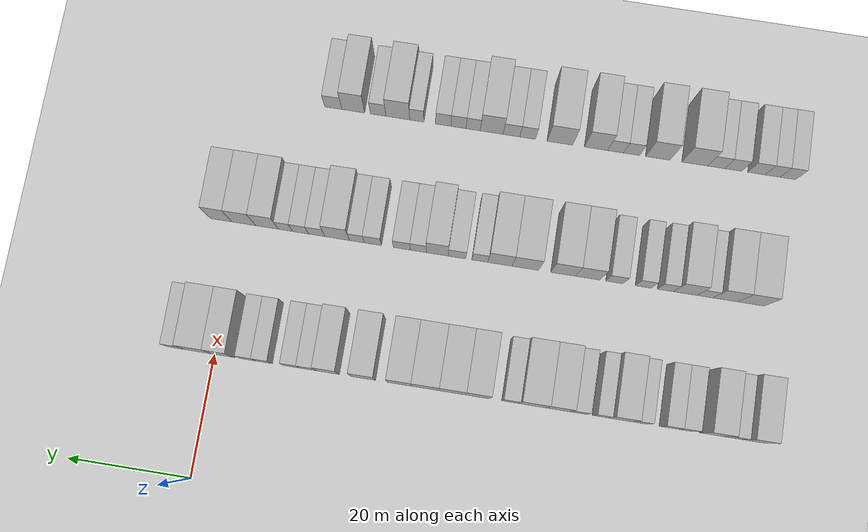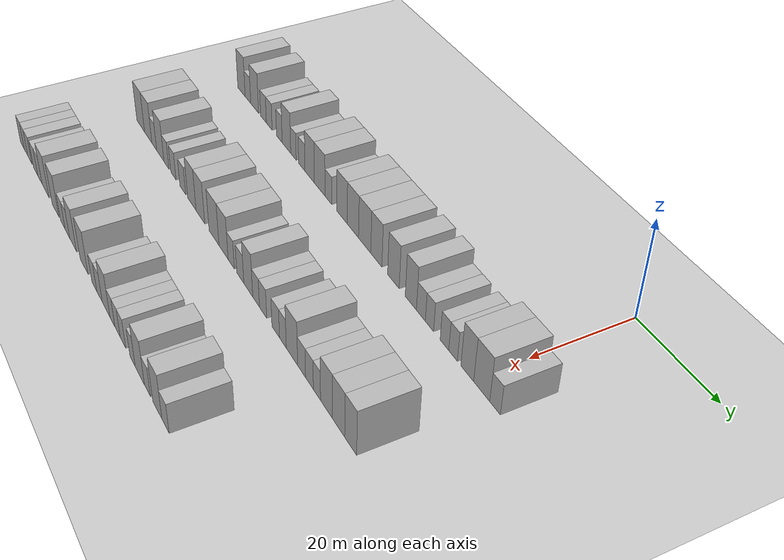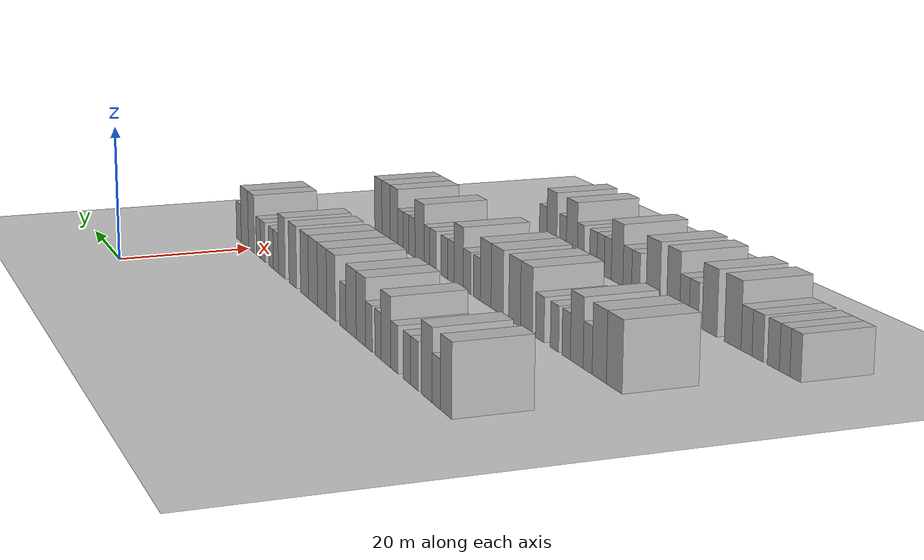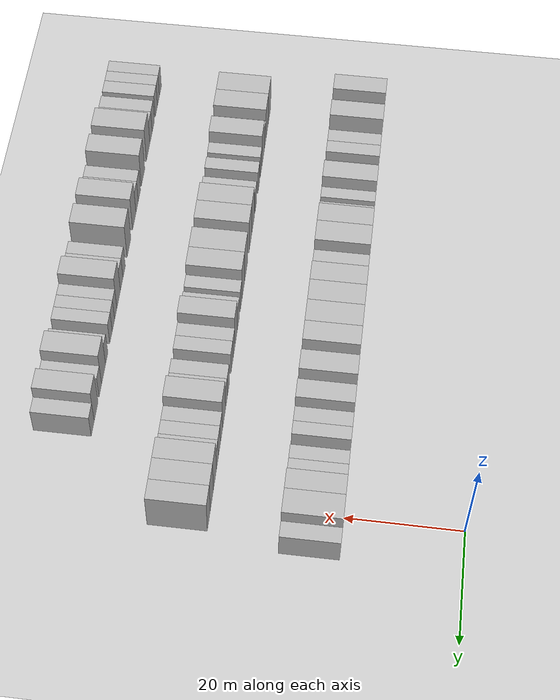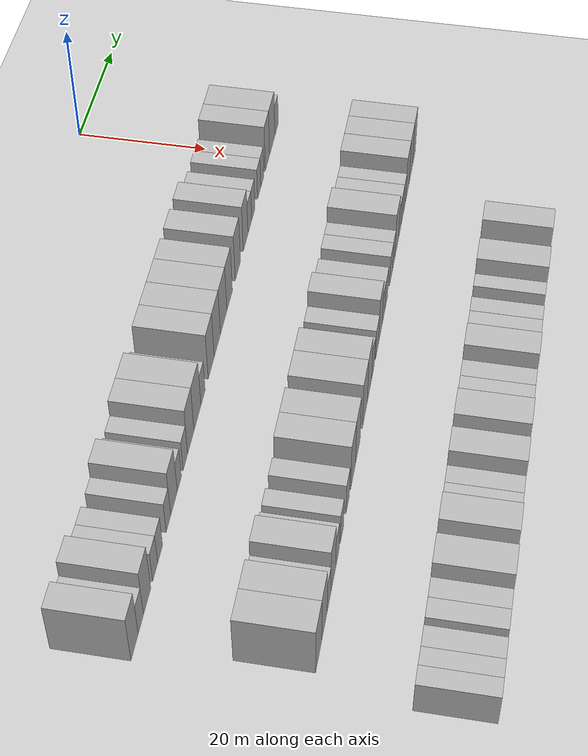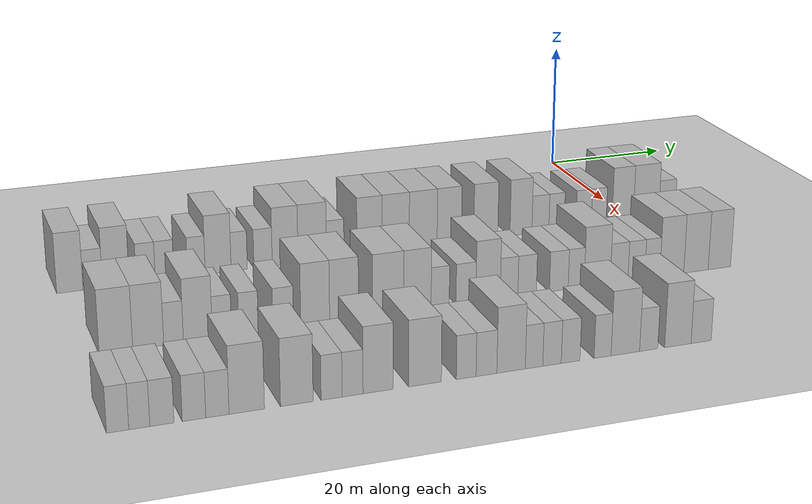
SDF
<sdf version="1.6">
 <world name="default">
  <include><name>ground_plane_1</name><uri>model://HANNAS_ground_plane</uri></include>
  <model name="building_74">
   <static>1</static>
   <pose>25.0000 -87.5375 0 0.000000 0.000000 0.000000</pose>
   <link name="link">
    <pose>0 0 4.50 0 0 0</pose>
    <collision name="collision"><geometry><box><size>10.0000 3.7074 9.0000</size></box></geometry></collision>
    <visual name="visual">
     <cast_shadows>0</cast_shadows>
     <geometry><box><size>10.0000 3.7074 9.0000</size></box></geometry>
     <material>
      <script>
       <uri>model://HANNAS_wall/materials/scripts</uri>
       <uri>model://HANNAS_wall/materials/textures</uri>
       <name>vrc/HANNAS_wall</name>
      </script>
     </material>
    </visual>
   </link>
  </model>
  <model name="building_75">
   <static>1</static>
   <pose>25.0000 -84.3026 0 0.000000 0.000000 0.000000</pose>
   <link name="link">
    <pose>0 0 3.00 0 0 0</pose>
    <collision name="collision"><geometry><box><size>10.0000 2.7624 6.0000</size></box></geometry></collision>
    <visual name="visual">
     <cast_shadows>0</cast_shadows>
     <geometry><box><size>10.0000 2.7624 6.0000</size></box></geometry>
     <material>
      <script>
       <uri>model://HANNAS_wall/materials/scripts</uri>
       <uri>model://HANNAS_wall/materials/textures</uri>
       <name>vrc/HANNAS_wall</name>
      </script>
     </material>
    </visual>
   </link>
  </model>
  <model name="building_76">
   <static>1</static>
   <pose>25.0000 -81.0090 0 0.000000 0.000000 0.000000</pose>
   <link name="link">
    <pose>0 0 4.50 0 0 0</pose>
    <collision name="collision"><geometry><box><size>10.0000 3.8246 9.0000</size></box></geometry></collision>
    <visual name="visual">
     <cast_shadows>0</cast_shadows>
     <geometry><box><size>10.0000 3.8246 9.0000</size></box></geometry>
     <material>
      <script>
       <uri>model://HANNAS_wall/materials/scripts</uri>
       <uri>model://HANNAS_wall/materials/textures</uri>
       <name>vrc/HANNAS_wall</name>
      </script>
     </material>
    </visual>
   </link>
  </model>
  <model name="building_77">
   <static>1</static>
   <pose>25.0000 -76.7319 0 0.000000 0.000000 0.000000</pose>
   <link name="link">
    <pose>0 0 3.00 0 0 0</pose>
    <collision name="collision"><geometry><box><size>10.0000 2.7297 6.0000</size></box></geometry></collision>
    <visual name="visual">
     <cast_shadows>0</cast_shadows>
     <geometry><box><size>10.0000 2.7297 6.0000</size></box></geometry>
     <material>
      <script>
       <uri>model://HANNAS_wall/materials/scripts</uri>
       <uri>model://HANNAS_wall/materials/textures</uri>
       <name>vrc/HANNAS_wall</name>
      </script>
     </material>
    </visual>
   </link>
  </model>
  <model name="building_78">
   <static>1</static>
   <pose>25.0000 -74.0123 0 0.000000 0.000000 0.000000</pose>
   <link name="link">
    <pose>0 0 3.00 0 0 0</pose>
    <collision name="collision"><geometry><box><size>10.0000 2.7094 6.0000</size></box></geometry></collision>
    <visual name="visual">
     <cast_shadows>0</cast_shadows>
     <geometry><box><size>10.0000 2.7094 6.0000</size></box></geometry>
     <material>
      <script>
       <uri>model://HANNAS_wall/materials/scripts</uri>
       <uri>model://HANNAS_wall/materials/textures</uri>
       <name>vrc/HANNAS_wall</name>
      </script>
     </material>
    </visual>
   </link>
  </model>
  <model name="building_79">
   <static>1</static>
   <pose>25.0000 -69.3657 0 0.000000 0.000000 0.000000</pose>
   <link name="link">
    <pose>0 0 3.00 0 0 0</pose>
    <collision name="collision"><geometry><box><size>10.0000 2.5837 6.0000</size></box></geometry></collision>
    <visual name="visual">
     <cast_shadows>0</cast_shadows>
     <geometry><box><size>10.0000 2.5837 6.0000</size></box></geometry>
     <material>
      <script>
       <uri>model://HANNAS_wall/materials/scripts</uri>
       <uri>model://HANNAS_wall/materials/textures</uri>
       <name>vrc/HANNAS_wall</name>
      </script>
     </material>
    </visual>
   </link>
  </model>
  <model name="building_80">
   <static>1</static>
   <pose>25.0000 -66.1560 0 0.000000 0.000000 0.000000</pose>
   <link name="link">
    <pose>0 0 4.50 0 0 0</pose>
    <collision name="collision"><geometry><box><size>10.0000 3.8357 9.0000</size></box></geometry></collision>
    <visual name="visual">
     <cast_shadows>0</cast_shadows>
     <geometry><box><size>10.0000 3.8357 9.0000</size></box></geometry>
     <material>
      <script>
       <uri>model://HANNAS_wall/materials/scripts</uri>
       <uri>model://HANNAS_wall/materials/textures</uri>
       <name>vrc/HANNAS_wall</name>
      </script>
     </material>
    </visual>
   </link>
  </model>
  <model name="building_81">
   <static>1</static>
   <pose>25.0000 -63.0343 0 0.000000 0.000000 0.000000</pose>
   <link name="link">
    <pose>0 0 3.00 0 0 0</pose>
    <collision name="collision"><geometry><box><size>10.0000 2.4078 6.0000</size></box></geometry></collision>
    <visual name="visual">
     <cast_shadows>0</cast_shadows>
     <geometry><box><size>10.0000 2.4078 6.0000</size></box></geometry>
     <material>
      <script>
       <uri>model://HANNAS_wall/materials/scripts</uri>
       <uri>model://HANNAS_wall/materials/textures</uri>
       <name>vrc/HANNAS_wall</name>
      </script>
     </material>
    </visual>
   </link>
  </model>
  <model name="building_82">
   <static>1</static>
   <pose>25.0000 -59.4556 0 0.000000 0.000000 0.000000</pose>
   <link name="link">
    <pose>0 0 3.00 0 0 0</pose>
    <collision name="collision"><geometry><box><size>10.0000 2.7496 6.0000</size></box></geometry></collision>
    <visual name="visual">
     <cast_shadows>0</cast_shadows>
     <geometry><box><size>10.0000 2.7496 6.0000</size></box></geometry>
     <material>
      <script>
       <uri>model://HANNAS_wall/materials/scripts</uri>
       <uri>model://HANNAS_wall/materials/textures</uri>
       <name>vrc/HANNAS_wall</name>
      </script>
     </material>
    </visual>
   </link>
  </model>
  <model name="building_83">
   <static>1</static>
   <pose>25.0000 -56.1258 0 0.000000 0.000000 0.000000</pose>
   <link name="link">
    <pose>0 0 4.50 0 0 0</pose>
    <collision name="collision"><geometry><box><size>10.0000 3.9099 9.0000</size></box></geometry></collision>
    <visual name="visual">
     <cast_shadows>0</cast_shadows>
     <geometry><box><size>10.0000 3.9099 9.0000</size></box></geometry>
     <material>
      <script>
       <uri>model://HANNAS_wall/materials/scripts</uri>
       <uri>model://HANNAS_wall/materials/textures</uri>
       <name>vrc/HANNAS_wall</name>
      </script>
     </material>
    </visual>
   </link>
  </model>
  <model name="building_84">
   <static>1</static>
   <pose>25.0000 -51.9844 0 0.000000 0.000000 0.000000</pose>
   <link name="link">
    <pose>0 0 4.50 0 0 0</pose>
    <collision name="collision"><geometry><box><size>10.0000 4.3730 9.0000</size></box></geometry></collision>
    <visual name="visual">
     <cast_shadows>0</cast_shadows>
     <geometry><box><size>10.0000 4.3730 9.0000</size></box></geometry>
     <material>
      <script>
       <uri>model://HANNAS_wall/materials/scripts</uri>
       <uri>model://HANNAS_wall/materials/textures</uri>
       <name>vrc/HANNAS_wall</name>
      </script>
     </material>
    </visual>
   </link>
  </model>
  <model name="building_85">
   <static>1</static>
   <pose>25.0000 -48.4469 0 0.000000 0.000000 0.000000</pose>
   <link name="link">
    <pose>0 0 3.00 0 0 0</pose>
    <collision name="collision"><geometry><box><size>10.0000 2.7020 6.0000</size></box></geometry></collision>
    <visual name="visual">
     <cast_shadows>0</cast_shadows>
     <geometry><box><size>10.0000 2.7020 6.0000</size></box></geometry>
     <material>
      <script>
       <uri>model://HANNAS_wall/materials/scripts</uri>
       <uri>model://HANNAS_wall/materials/textures</uri>
       <name>vrc/HANNAS_wall</name>
      </script>
     </material>
    </visual>
   </link>
  </model>
  <model name="building_86">
   <static>1</static>
   <pose>25.0000 -43.1123 0 0.000000 0.000000 0.000000</pose>
   <link name="link">
    <pose>0 0 4.50 0 0 0</pose>
    <collision name="collision"><geometry><box><size>10.0000 3.9672 9.0000</size></box></geometry></collision>
    <visual name="visual">
     <cast_shadows>0</cast_shadows>
     <geometry><box><size>10.0000 3.9672 9.0000</size></box></geometry>
     <material>
      <script>
       <uri>model://HANNAS_wall/materials/scripts</uri>
       <uri>model://HANNAS_wall/materials/textures</uri>
       <name>vrc/HANNAS_wall</name>
      </script>
     </material>
    </visual>
   </link>
  </model>
  <model name="building_87">
   <static>1</static>
   <pose>25.0000 -38.9958 0 0.000000 0.000000 0.000000</pose>
   <link name="link">
    <pose>0 0 4.50 0 0 0</pose>
    <collision name="collision"><geometry><box><size>10.0000 4.2660 9.0000</size></box></geometry></collision>
    <visual name="visual">
     <cast_shadows>0</cast_shadows>
     <geometry><box><size>10.0000 4.2660 9.0000</size></box></geometry>
     <material>
      <script>
       <uri>model://HANNAS_wall/materials/scripts</uri>
       <uri>model://HANNAS_wall/materials/textures</uri>
       <name>vrc/HANNAS_wall</name>
      </script>
     </material>
    </visual>
   </link>
  </model>
  <model name="building_88">
   <static>1</static>
   <pose>25.0000 -34.6465 0 0.000000 0.000000 0.000000</pose>
   <link name="link">
    <pose>0 0 4.50 0 0 0</pose>
    <collision name="collision"><geometry><box><size>10.0000 4.4325 9.0000</size></box></geometry></collision>
    <visual name="visual">
     <cast_shadows>0</cast_shadows>
     <geometry><box><size>10.0000 4.4325 9.0000</size></box></geometry>
     <material>
      <script>
       <uri>model://HANNAS_wall/materials/scripts</uri>
       <uri>model://HANNAS_wall/materials/textures</uri>
       <name>vrc/HANNAS_wall</name>
      </script>
     </material>
    </visual>
   </link>
  </model>
  <model name="building_89">
   <static>1</static>
   <pose>25.0000 -30.4610 0 0.000000 0.000000 0.000000</pose>
   <link name="link">
    <pose>0 0 4.50 0 0 0</pose>
    <collision name="collision"><geometry><box><size>10.0000 3.9385 9.0000</size></box></geometry></collision>
    <visual name="visual">
     <cast_shadows>0</cast_shadows>
     <geometry><box><size>10.0000 3.9385 9.0000</size></box></geometry>
     <material>
      <script>
       <uri>model://HANNAS_wall/materials/scripts</uri>
       <uri>model://HANNAS_wall/materials/textures</uri>
       <name>vrc/HANNAS_wall</name>
      </script>
     </material>
    </visual>
   </link>
  </model>
  <model name="building_90">
   <static>1</static>
   <pose>25.0000 -24.5266 0 0.000000 0.000000 0.000000</pose>
   <link name="link">
    <pose>0 0 4.50 0 0 0</pose>
    <collision name="collision"><geometry><box><size>10.0000 3.9303 9.0000</size></box></geometry></collision>
    <visual name="visual">
     <cast_shadows>0</cast_shadows>
     <geometry><box><size>10.0000 3.9303 9.0000</size></box></geometry>
     <material>
      <script>
       <uri>model://HANNAS_wall/materials/scripts</uri>
       <uri>model://HANNAS_wall/materials/textures</uri>
       <name>vrc/HANNAS_wall</name>
      </script>
     </material>
    </visual>
   </link>
  </model>
  <model name="building_91">
   <static>1</static>
   <pose>25.0000 -18.7442 0 0.000000 0.000000 0.000000</pose>
   <link name="link">
    <pose>0 0 4.50 0 0 0</pose>
    <collision name="collision"><geometry><box><size>10.0000 3.6345 9.0000</size></box></geometry></collision>
    <visual name="visual">
     <cast_shadows>0</cast_shadows>
     <geometry><box><size>10.0000 3.6345 9.0000</size></box></geometry>
     <material>
      <script>
       <uri>model://HANNAS_wall/materials/scripts</uri>
       <uri>model://HANNAS_wall/materials/textures</uri>
       <name>vrc/HANNAS_wall</name>
      </script>
     </material>
    </visual>
   </link>
  </model>
  <model name="building_92">
   <static>1</static>
   <pose>25.0000 -15.5085 0 0.000000 0.000000 0.000000</pose>
   <link name="link">
    <pose>0 0 3.00 0 0 0</pose>
    <collision name="collision"><geometry><box><size>10.0000 2.8370 6.0000</size></box></geometry></collision>
    <visual name="visual">
     <cast_shadows>0</cast_shadows>
     <geometry><box><size>10.0000 2.8370 6.0000</size></box></geometry>
     <material>
      <script>
       <uri>model://HANNAS_wall/materials/scripts</uri>
       <uri>model://HANNAS_wall/materials/textures</uri>
       <name>vrc/HANNAS_wall</name>
      </script>
     </material>
    </visual>
   </link>
  </model>
  <model name="building_93">
   <static>1</static>
   <pose>25.0000 -12.8045 0 0.000000 0.000000 0.000000</pose>
   <link name="link">
    <pose>0 0 3.00 0 0 0</pose>
    <collision name="collision"><geometry><box><size>10.0000 2.5710 6.0000</size></box></geometry></collision>
    <visual name="visual">
     <cast_shadows>0</cast_shadows>
     <geometry><box><size>10.0000 2.5710 6.0000</size></box></geometry>
     <material>
      <script>
       <uri>model://HANNAS_wall/materials/scripts</uri>
       <uri>model://HANNAS_wall/materials/textures</uri>
       <name>vrc/HANNAS_wall</name>
      </script>
     </material>
    </visual>
   </link>
  </model>
  <model name="building_94">
   <static>1</static>
   <pose>25.0000 -8.2225 0 0.000000 0.000000 0.000000</pose>
   <link name="link">
    <pose>0 0 3.00 0 0 0</pose>
    <collision name="collision"><geometry><box><size>10.0000 2.5929 6.0000</size></box></geometry></collision>
    <visual name="visual">
     <cast_shadows>0</cast_shadows>
     <geometry><box><size>10.0000 2.5929 6.0000</size></box></geometry>
     <material>
      <script>
       <uri>model://HANNAS_wall/materials/scripts</uri>
       <uri>model://HANNAS_wall/materials/textures</uri>
       <name>vrc/HANNAS_wall</name>
      </script>
     </material>
    </visual>
   </link>
  </model>
  <model name="building_95">
   <static>1</static>
   <pose>25.0000 -5.6482 0 0.000000 0.000000 0.000000</pose>
   <link name="link">
    <pose>0 0 3.00 0 0 0</pose>
    <collision name="collision"><geometry><box><size>10.0000 2.5558 6.0000</size></box></geometry></collision>
    <visual name="visual">
     <cast_shadows>0</cast_shadows>
     <geometry><box><size>10.0000 2.5558 6.0000</size></box></geometry>
     <material>
      <script>
       <uri>model://HANNAS_wall/materials/scripts</uri>
       <uri>model://HANNAS_wall/materials/textures</uri>
       <name>vrc/HANNAS_wall</name>
      </script>
     </material>
    </visual>
   </link>
  </model>
  <model name="building_96">
   <static>1</static>
   <pose>25.0000 -1.5371 0 0.000000 0.000000 0.000000</pose>
   <link name="link">
    <pose>0 0 4.50 0 0 0</pose>
    <collision name="collision"><geometry><box><size>10.0000 3.6664 9.0000</size></box></geometry></collision>
    <visual name="visual">
     <cast_shadows>0</cast_shadows>
     <geometry><box><size>10.0000 3.6664 9.0000</size></box></geometry>
     <material>
      <script>
       <uri>model://HANNAS_wall/materials/scripts</uri>
       <uri>model://HANNAS_wall/materials/textures</uri>
       <name>vrc/HANNAS_wall</name>
      </script>
     </material>
    </visual>
   </link>
  </model>
  <model name="building_97">
   <static>1</static>
   <pose>25.0000 2.5165 0 0.000000 0.000000 0.000000</pose>
   <link name="link">
    <pose>0 0 4.50 0 0 0</pose>
    <collision name="collision"><geometry><box><size>10.0000 4.4409 9.0000</size></box></geometry></collision>
    <visual name="visual">
     <cast_shadows>0</cast_shadows>
     <geometry><box><size>10.0000 4.4409 9.0000</size></box></geometry>
     <material>
      <script>
       <uri>model://HANNAS_wall/materials/scripts</uri>
       <uri>model://HANNAS_wall/materials/textures</uri>
       <name>vrc/HANNAS_wall</name>
      </script>
     </material>
    </visual>
   </link>
  </model>
  <model name="building_98">
   <static>1</static>
   <pose>25.0000 6.1725 0 0.000000 0.000000 0.000000</pose>
   <link name="link">
    <pose>0 0 3.00 0 0 0</pose>
    <collision name="collision"><geometry><box><size>10.0000 2.8710 6.0000</size></box></geometry></collision>
    <visual name="visual">
     <cast_shadows>0</cast_shadows>
     <geometry><box><size>10.0000 2.8710 6.0000</size></box></geometry>
     <material>
      <script>
       <uri>model://HANNAS_wall/materials/scripts</uri>
       <uri>model://HANNAS_wall/materials/textures</uri>
       <name>vrc/HANNAS_wall</name>
      </script>
     </material>
    </visual>
   </link>
  </model>
  <model name="building_263">
   <static>1</static>
   <pose>47.0000 -85.0600 0 0.000000 0.000000 0.000000</pose>
   <link name="link">
    <pose>0 0 4.50 0 0 0</pose>
    <collision name="collision"><geometry><box><size>10.0000 4.3910 9.0000</size></box></geometry></collision>
    <visual name="visual">
     <cast_shadows>0</cast_shadows>
     <geometry><box><size>10.0000 4.3910 9.0000</size></box></geometry>
     <material>
      <script>
       <uri>model://HANNAS_wall/materials/scripts</uri>
       <uri>model://HANNAS_wall/materials/textures</uri>
       <name>vrc/HANNAS_wall</name>
      </script>
     </material>
    </visual>
   </link>
  </model>
  <model name="building_264">
   <static>1</static>
   <pose>47.0000 -80.8211 0 0.000000 0.000000 0.000000</pose>
   <link name="link">
    <pose>0 0 4.50 0 0 0</pose>
    <collision name="collision"><geometry><box><size>10.0000 4.0868 9.0000</size></box></geometry></collision>
    <visual name="visual">
     <cast_shadows>0</cast_shadows>
     <geometry><box><size>10.0000 4.0868 9.0000</size></box></geometry>
     <material>
      <script>
       <uri>model://HANNAS_wall/materials/scripts</uri>
       <uri>model://HANNAS_wall/materials/textures</uri>
       <name>vrc/HANNAS_wall</name>
      </script>
     </material>
    </visual>
   </link>
  </model>
  <model name="building_265">
   <static>1</static>
   <pose>47.0000 -77.4665 0 0.000000 0.000000 0.000000</pose>
   <link name="link">
    <pose>0 0 3.00 0 0 0</pose>
    <collision name="collision"><geometry><box><size>10.0000 2.6225 6.0000</size></box></geometry></collision>
    <visual name="visual">
     <cast_shadows>0</cast_shadows>
     <geometry><box><size>10.0000 2.6225 6.0000</size></box></geometry>
     <material>
      <script>
       <uri>model://HANNAS_wall/materials/scripts</uri>
       <uri>model://HANNAS_wall/materials/textures</uri>
       <name>vrc/HANNAS_wall</name>
      </script>
     </material>
    </visual>
   </link>
  </model>
  <model name="building_266">
   <static>1</static>
   <pose>47.0000 -74.2097 0 0.000000 0.000000 0.000000</pose>
   <link name="link">
    <pose>0 0 4.50 0 0 0</pose>
    <collision name="collision"><geometry><box><size>10.0000 3.8912 9.0000</size></box></geometry></collision>
    <visual name="visual">
     <cast_shadows>0</cast_shadows>
     <geometry><box><size>10.0000 3.8912 9.0000</size></box></geometry>
     <material>
      <script>
       <uri>model://HANNAS_wall/materials/scripts</uri>
       <uri>model://HANNAS_wall/materials/textures</uri>
       <name>vrc/HANNAS_wall</name>
      </script>
     </material>
    </visual>
   </link>
  </model>
  <model name="building_267">
   <static>1</static>
   <pose>47.0000 -70.9633 0 0.000000 0.000000 0.000000</pose>
   <link name="link">
    <pose>0 0 3.00 0 0 0</pose>
    <collision name="collision"><geometry><box><size>10.0000 2.6015 6.0000</size></box></geometry></collision>
    <visual name="visual">
     <cast_shadows>0</cast_shadows>
     <geometry><box><size>10.0000 2.6015 6.0000</size></box></geometry>
     <material>
      <script>
       <uri>model://HANNAS_wall/materials/scripts</uri>
       <uri>model://HANNAS_wall/materials/textures</uri>
       <name>vrc/HANNAS_wall</name>
      </script>
     </material>
    </visual>
   </link>
  </model>
  <model name="building_268">
   <static>1</static>
   <pose>47.0000 -67.3278 0 0.000000 0.000000 0.000000</pose>
   <link name="link">
    <pose>0 0 3.00 0 0 0</pose>
    <collision name="collision"><geometry><box><size>10.0000 2.6695 6.0000</size></box></geometry></collision>
    <visual name="visual">
     <cast_shadows>0</cast_shadows>
     <geometry><box><size>10.0000 2.6695 6.0000</size></box></geometry>
     <material>
      <script>
       <uri>model://HANNAS_wall/materials/scripts</uri>
       <uri>model://HANNAS_wall/materials/textures</uri>
       <name>vrc/HANNAS_wall</name>
      </script>
     </material>
    </visual>
   </link>
  </model>
  <model name="building_269">
   <static>1</static>
   <pose>47.0000 -62.5623 0 0.000000 0.000000 0.000000</pose>
   <link name="link">
    <pose>0 0 3.00 0 0 0</pose>
    <collision name="collision"><geometry><box><size>10.0000 2.8614 6.0000</size></box></geometry></collision>
    <visual name="visual">
     <cast_shadows>0</cast_shadows>
     <geometry><box><size>10.0000 2.8614 6.0000</size></box></geometry>
     <material>
      <script>
       <uri>model://HANNAS_wall/materials/scripts</uri>
       <uri>model://HANNAS_wall/materials/textures</uri>
       <name>vrc/HANNAS_wall</name>
      </script>
     </material>
    </visual>
   </link>
  </model>
  <model name="building_270">
   <static>1</static>
   <pose>47.0000 -58.1049 0 0.000000 0.000000 0.000000</pose>
   <link name="link">
    <pose>0 0 4.50 0 0 0</pose>
    <collision name="collision"><geometry><box><size>10.0000 4.0535 9.0000</size></box></geometry></collision>
    <visual name="visual">
     <cast_shadows>0</cast_shadows>
     <geometry><box><size>10.0000 4.0535 9.0000</size></box></geometry>
     <material>
      <script>
       <uri>model://HANNAS_wall/materials/scripts</uri>
       <uri>model://HANNAS_wall/materials/textures</uri>
       <name>vrc/HANNAS_wall</name>
      </script>
     </material>
    </visual>
   </link>
  </model>
  <model name="building_271">
   <static>1</static>
   <pose>47.0000 -54.0281 0 0.000000 0.000000 0.000000</pose>
   <link name="link">
    <pose>0 0 4.50 0 0 0</pose>
    <collision name="collision"><geometry><box><size>10.0000 4.1001 9.0000</size></box></geometry></collision>
    <visual name="visual">
     <cast_shadows>0</cast_shadows>
     <geometry><box><size>10.0000 4.1001 9.0000</size></box></geometry>
     <material>
      <script>
       <uri>model://HANNAS_wall/materials/scripts</uri>
       <uri>model://HANNAS_wall/materials/textures</uri>
       <name>vrc/HANNAS_wall</name>
      </script>
     </material>
    </visual>
   </link>
  </model>
  <model name="building_272">
   <static>1</static>
   <pose>47.0000 -47.7485 0 0.000000 0.000000 0.000000</pose>
   <link name="link">
    <pose>0 0 4.50 0 0 0</pose>
    <collision name="collision"><geometry><box><size>10.0000 4.4590 9.0000</size></box></geometry></collision>
    <visual name="visual">
     <cast_shadows>0</cast_shadows>
     <geometry><box><size>10.0000 4.4590 9.0000</size></box></geometry>
     <material>
      <script>
       <uri>model://HANNAS_wall/materials/scripts</uri>
       <uri>model://HANNAS_wall/materials/textures</uri>
       <name>vrc/HANNAS_wall</name>
      </script>
     </material>
    </visual>
   </link>
  </model>
  <model name="building_273">
   <static>1</static>
   <pose>47.0000 -43.5096 0 0.000000 0.000000 0.000000</pose>
   <link name="link">
    <pose>0 0 4.50 0 0 0</pose>
    <collision name="collision"><geometry><box><size>10.0000 4.0189 9.0000</size></box></geometry></collision>
    <visual name="visual">
     <cast_shadows>0</cast_shadows>
     <geometry><box><size>10.0000 4.0189 9.0000</size></box></geometry>
     <material>
      <script>
       <uri>model://HANNAS_wall/materials/scripts</uri>
       <uri>model://HANNAS_wall/materials/textures</uri>
       <name>vrc/HANNAS_wall</name>
      </script>
     </material>
    </visual>
   </link>
  </model>
  <model name="building_274">
   <static>1</static>
   <pose>47.0000 -40.1696 0 0.000000 0.000000 0.000000</pose>
   <link name="link">
    <pose>0 0 3.00 0 0 0</pose>
    <collision name="collision"><geometry><box><size>10.0000 2.6611 6.0000</size></box></geometry></collision>
    <visual name="visual">
     <cast_shadows>0</cast_shadows>
     <geometry><box><size>10.0000 2.6611 6.0000</size></box></geometry>
     <material>
      <script>
       <uri>model://HANNAS_wall/materials/scripts</uri>
       <uri>model://HANNAS_wall/materials/textures</uri>
       <name>vrc/HANNAS_wall</name>
      </script>
     </material>
    </visual>
   </link>
  </model>
  <model name="building_275">
   <static>1</static>
   <pose>47.0000 -36.3636 0 0.000000 0.000000 0.000000</pose>
   <link name="link">
    <pose>0 0 3.00 0 0 0</pose>
    <collision name="collision"><geometry><box><size>10.0000 2.9509 6.0000</size></box></geometry></collision>
    <visual name="visual">
     <cast_shadows>0</cast_shadows>
     <geometry><box><size>10.0000 2.9509 6.0000</size></box></geometry>
     <material>
      <script>
       <uri>model://HANNAS_wall/materials/scripts</uri>
       <uri>model://HANNAS_wall/materials/textures</uri>
       <name>vrc/HANNAS_wall</name>
      </script>
     </material>
    </visual>
   </link>
  </model>
  <model name="building_276">
   <static>1</static>
   <pose>47.0000 -33.0685 0 0.000000 0.000000 0.000000</pose>
   <link name="link">
    <pose>0 0 4.50 0 0 0</pose>
    <collision name="collision"><geometry><box><size>10.0000 3.6393 9.0000</size></box></geometry></collision>
    <visual name="visual">
     <cast_shadows>0</cast_shadows>
     <geometry><box><size>10.0000 3.6393 9.0000</size></box></geometry>
     <material>
      <script>
       <uri>model://HANNAS_wall/materials/scripts</uri>
       <uri>model://HANNAS_wall/materials/textures</uri>
       <name>vrc/HANNAS_wall</name>
      </script>
     </material>
    </visual>
   </link>
  </model>
  <model name="building_277">
   <static>1</static>
   <pose>47.0000 -29.9137 0 0.000000 0.000000 0.000000</pose>
   <link name="link">
    <pose>0 0 3.00 0 0 0</pose>
    <collision name="collision"><geometry><box><size>10.0000 2.6703 6.0000</size></box></geometry></collision>
    <visual name="visual">
     <cast_shadows>0</cast_shadows>
     <geometry><box><size>10.0000 2.6703 6.0000</size></box></geometry>
     <material>
      <script>
       <uri>model://HANNAS_wall/materials/scripts</uri>
       <uri>model://HANNAS_wall/materials/textures</uri>
       <name>vrc/HANNAS_wall</name>
      </script>
     </material>
    </visual>
   </link>
  </model>
  <model name="building_278">
   <static>1</static>
   <pose>47.0000 -27.1673 0 0.000000 0.000000 0.000000</pose>
   <link name="link">
    <pose>0 0 3.00 0 0 0</pose>
    <collision name="collision"><geometry><box><size>10.0000 2.8223 6.0000</size></box></geometry></collision>
    <visual name="visual">
     <cast_shadows>0</cast_shadows>
     <geometry><box><size>10.0000 2.8223 6.0000</size></box></geometry>
     <material>
      <script>
       <uri>model://HANNAS_wall/materials/scripts</uri>
       <uri>model://HANNAS_wall/materials/textures</uri>
       <name>vrc/HANNAS_wall</name>
      </script>
     </material>
    </visual>
   </link>
  </model>
  <model name="building_279">
   <static>1</static>
   <pose>47.0000 -22.3182 0 0.000000 0.000000 0.000000</pose>
   <link name="link">
    <pose>0 0 3.00 0 0 0</pose>
    <collision name="collision"><geometry><box><size>10.0000 2.8759 6.0000</size></box></geometry></collision>
    <visual name="visual">
     <cast_shadows>0</cast_shadows>
     <geometry><box><size>10.0000 2.8759 6.0000</size></box></geometry>
     <material>
      <script>
       <uri>model://HANNAS_wall/materials/scripts</uri>
       <uri>model://HANNAS_wall/materials/textures</uri>
       <name>vrc/HANNAS_wall</name>
      </script>
     </material>
    </visual>
   </link>
  </model>
  <model name="building_280">
   <static>1</static>
   <pose>47.0000 -19.6456 0 0.000000 0.000000 0.000000</pose>
   <link name="link">
    <pose>0 0 3.00 0 0 0</pose>
    <collision name="collision"><geometry><box><size>10.0000 2.4693 6.0000</size></box></geometry></collision>
    <visual name="visual">
     <cast_shadows>0</cast_shadows>
     <geometry><box><size>10.0000 2.4693 6.0000</size></box></geometry>
     <material>
      <script>
       <uri>model://HANNAS_wall/materials/scripts</uri>
       <uri>model://HANNAS_wall/materials/textures</uri>
       <name>vrc/HANNAS_wall</name>
      </script>
     </material>
    </visual>
   </link>
  </model>
  <model name="building_281">
   <static>1</static>
   <pose>47.0000 -16.3624 0 0.000000 0.000000 0.000000</pose>
   <link name="link">
    <pose>0 0 4.50 0 0 0</pose>
    <collision name="collision"><geometry><box><size>10.0000 4.0971 9.0000</size></box></geometry></collision>
    <visual name="visual">
     <cast_shadows>0</cast_shadows>
     <geometry><box><size>10.0000 4.0971 9.0000</size></box></geometry>
     <material>
      <script>
       <uri>model://HANNAS_wall/materials/scripts</uri>
       <uri>model://HANNAS_wall/materials/textures</uri>
       <name>vrc/HANNAS_wall</name>
      </script>
     </material>
    </visual>
   </link>
  </model>
  <model name="building_282">
   <static>1</static>
   <pose>47.0000 -12.9237 0 0.000000 0.000000 0.000000</pose>
   <link name="link">
    <pose>0 0 3.00 0 0 0</pose>
    <collision name="collision"><geometry><box><size>10.0000 2.7804 6.0000</size></box></geometry></collision>
    <visual name="visual">
     <cast_shadows>0</cast_shadows>
     <geometry><box><size>10.0000 2.7804 6.0000</size></box></geometry>
     <material>
      <script>
       <uri>model://HANNAS_wall/materials/scripts</uri>
       <uri>model://HANNAS_wall/materials/textures</uri>
       <name>vrc/HANNAS_wall</name>
      </script>
     </material>
    </visual>
   </link>
  </model>
  <model name="building_283">
   <static>1</static>
   <pose>47.0000 -10.1990 0 0.000000 0.000000 0.000000</pose>
   <link name="link">
    <pose>0 0 3.00 0 0 0</pose>
    <collision name="collision"><geometry><box><size>10.0000 2.6691 6.0000</size></box></geometry></collision>
    <visual name="visual">
     <cast_shadows>0</cast_shadows>
     <geometry><box><size>10.0000 2.6691 6.0000</size></box></geometry>
     <material>
      <script>
       <uri>model://HANNAS_wall/materials/scripts</uri>
       <uri>model://HANNAS_wall/materials/textures</uri>
       <name>vrc/HANNAS_wall</name>
      </script>
     </material>
    </visual>
   </link>
  </model>
  <model name="building_284">
   <static>1</static>
   <pose>47.0000 -7.6626 0 0.000000 0.000000 0.000000</pose>
   <link name="link">
    <pose>0 0 3.00 0 0 0</pose>
    <collision name="collision"><geometry><box><size>10.0000 2.4037 6.0000</size></box></geometry></collision>
    <visual name="visual">
     <cast_shadows>0</cast_shadows>
     <geometry><box><size>10.0000 2.4037 6.0000</size></box></geometry>
     <material>
      <script>
       <uri>model://HANNAS_wall/materials/scripts</uri>
       <uri>model://HANNAS_wall/materials/textures</uri>
       <name>vrc/HANNAS_wall</name>
      </script>
     </material>
    </visual>
   </link>
  </model>
  <model name="building_285">
   <static>1</static>
   <pose>47.0000 -4.5338 0 0.000000 0.000000 0.000000</pose>
   <link name="link">
    <pose>0 0 4.50 0 0 0</pose>
    <collision name="collision"><geometry><box><size>10.0000 3.8539 9.0000</size></box></geometry></collision>
    <visual name="visual">
     <cast_shadows>0</cast_shadows>
     <geometry><box><size>10.0000 3.8539 9.0000</size></box></geometry>
     <material>
      <script>
       <uri>model://HANNAS_wall/materials/scripts</uri>
       <uri>model://HANNAS_wall/materials/textures</uri>
       <name>vrc/HANNAS_wall</name>
      </script>
     </material>
    </visual>
   </link>
  </model>
  <model name="building_286">
   <static>1</static>
   <pose>47.0000 -0.6220 0 0.000000 0.000000 0.000000</pose>
   <link name="link">
    <pose>0 0 4.50 0 0 0</pose>
    <collision name="collision"><geometry><box><size>10.0000 3.9697 9.0000</size></box></geometry></collision>
    <visual name="visual">
     <cast_shadows>0</cast_shadows>
     <geometry><box><size>10.0000 3.9697 9.0000</size></box></geometry>
     <material>
      <script>
       <uri>model://HANNAS_wall/materials/scripts</uri>
       <uri>model://HANNAS_wall/materials/textures</uri>
       <name>vrc/HANNAS_wall</name>
      </script>
     </material>
    </visual>
   </link>
  </model>
  <model name="building_287">
   <static>1</static>
   <pose>47.0000 3.1961 0 0.000000 0.000000 0.000000</pose>
   <link name="link">
    <pose>0 0 4.50 0 0 0</pose>
    <collision name="collision"><geometry><box><size>10.0000 3.6664 9.0000</size></box></geometry></collision>
    <visual name="visual">
     <cast_shadows>0</cast_shadows>
     <geometry><box><size>10.0000 3.6664 9.0000</size></box></geometry>
     <material>
      <script>
       <uri>model://HANNAS_wall/materials/scripts</uri>
       <uri>model://HANNAS_wall/materials/textures</uri>
       <name>vrc/HANNAS_wall</name>
      </script>
     </material>
    </visual>
   </link>
  </model>
  <model name="building_464">
   <static>1</static>
   <pose>69.0000 -88.9076 0 0.000000 0.000000 0.000000</pose>
   <link name="link">
    <pose>0 0 3.00 0 0 0</pose>
    <collision name="collision"><geometry><box><size>10.0000 2.6343 6.0000</size></box></geometry></collision>
    <visual name="visual">
     <cast_shadows>0</cast_shadows>
     <geometry><box><size>10.0000 2.6343 6.0000</size></box></geometry>
     <material>
      <script>
       <uri>model://HANNAS_wall/materials/scripts</uri>
       <uri>model://HANNAS_wall/materials/textures</uri>
       <name>vrc/HANNAS_wall</name>
      </script>
     </material>
    </visual>
   </link>
  </model>
  <model name="building_465">
   <static>1</static>
   <pose>69.0000 -86.3370 0 0.000000 0.000000 0.000000</pose>
   <link name="link">
    <pose>0 0 3.00 0 0 0</pose>
    <collision name="collision"><geometry><box><size>10.0000 2.5070 6.0000</size></box></geometry></collision>
    <visual name="visual">
     <cast_shadows>0</cast_shadows>
     <geometry><box><size>10.0000 2.5070 6.0000</size></box></geometry>
     <material>
      <script>
       <uri>model://HANNAS_wall/materials/scripts</uri>
       <uri>model://HANNAS_wall/materials/textures</uri>
       <name>vrc/HANNAS_wall</name>
      </script>
     </material>
    </visual>
   </link>
  </model>
  <model name="building_466">
   <static>1</static>
   <pose>69.0000 -83.6263 0 0.000000 0.000000 0.000000</pose>
   <link name="link">
    <pose>0 0 3.00 0 0 0</pose>
    <collision name="collision"><geometry><box><size>10.0000 2.9145 6.0000</size></box></geometry></collision>
    <visual name="visual">
     <cast_shadows>0</cast_shadows>
     <geometry><box><size>10.0000 2.9145 6.0000</size></box></geometry>
     <material>
      <script>
       <uri>model://HANNAS_wall/materials/scripts</uri>
       <uri>model://HANNAS_wall/materials/textures</uri>
       <name>vrc/HANNAS_wall</name>
      </script>
     </material>
    </visual>
   </link>
  </model>
  <model name="building_467">
   <static>1</static>
   <pose>69.0000 -79.7408 0 0.000000 0.000000 0.000000</pose>
   <link name="link">
    <pose>0 0 3.00 0 0 0</pose>
    <collision name="collision"><geometry><box><size>10.0000 2.8564 6.0000</size></box></geometry></collision>
    <visual name="visual">
     <cast_shadows>0</cast_shadows>
     <geometry><box><size>10.0000 2.8564 6.0000</size></box></geometry>
     <material>
      <script>
       <uri>model://HANNAS_wall/materials/scripts</uri>
       <uri>model://HANNAS_wall/materials/textures</uri>
       <name>vrc/HANNAS_wall</name>
      </script>
     </material>
    </visual>
   </link>
  </model>
  <model name="building_468">
   <static>1</static>
   <pose>69.0000 -76.8860 0 0.000000 0.000000 0.000000</pose>
   <link name="link">
    <pose>0 0 3.00 0 0 0</pose>
    <collision name="collision"><geometry><box><size>10.0000 2.8534 6.0000</size></box></geometry></collision>
    <visual name="visual">
     <cast_shadows>0</cast_shadows>
     <geometry><box><size>10.0000 2.8534 6.0000</size></box></geometry>
     <material>
      <script>
       <uri>model://HANNAS_wall/materials/scripts</uri>
       <uri>model://HANNAS_wall/materials/textures</uri>
       <name>vrc/HANNAS_wall</name>
      </script>
     </material>
    </visual>
   </link>
  </model>
  <model name="building_469">
   <static>1</static>
   <pose>69.0000 -73.2644 0 0.000000 0.000000 0.000000</pose>
   <link name="link">
    <pose>0 0 4.50 0 0 0</pose>
    <collision name="collision"><geometry><box><size>10.0000 4.3896 9.0000</size></box></geometry></collision>
    <visual name="visual">
     <cast_shadows>0</cast_shadows>
     <geometry><box><size>10.0000 4.3896 9.0000</size></box></geometry>
     <material>
      <script>
       <uri>model://HANNAS_wall/materials/scripts</uri>
       <uri>model://HANNAS_wall/materials/textures</uri>
       <name>vrc/HANNAS_wall</name>
      </script>
     </material>
    </visual>
   </link>
  </model>
  <model name="building_470">
   <static>1</static>
   <pose>69.0000 -67.0026 0 0.000000 0.000000 0.000000</pose>
   <link name="link">
    <pose>0 0 4.50 0 0 0</pose>
    <collision name="collision"><geometry><box><size>10.0000 4.1340 9.0000</size></box></geometry></collision>
    <visual name="visual">
     <cast_shadows>0</cast_shadows>
     <geometry><box><size>10.0000 4.1340 9.0000</size></box></geometry>
     <material>
      <script>
       <uri>model://HANNAS_wall/materials/scripts</uri>
       <uri>model://HANNAS_wall/materials/textures</uri>
       <name>vrc/HANNAS_wall</name>
      </script>
     </material>
    </visual>
   </link>
  </model>
  <model name="building_471">
   <static>1</static>
   <pose>69.0000 -62.5901 0 0.000000 0.000000 0.000000</pose>
   <link name="link">
    <pose>0 0 3.00 0 0 0</pose>
    <collision name="collision"><geometry><box><size>10.0000 2.6910 6.0000</size></box></geometry></collision>
    <visual name="visual">
     <cast_shadows>0</cast_shadows>
     <geometry><box><size>10.0000 2.6910 6.0000</size></box></geometry>
     <material>
      <script>
       <uri>model://HANNAS_wall/materials/scripts</uri>
       <uri>model://HANNAS_wall/materials/textures</uri>
       <name>vrc/HANNAS_wall</name>
      </script>
     </material>
    </visual>
   </link>
  </model>
  <model name="building_472">
   <static>1</static>
   <pose>69.0000 -59.8926 0 0.000000 0.000000 0.000000</pose>
   <link name="link">
    <pose>0 0 3.00 0 0 0</pose>
    <collision name="collision"><geometry><box><size>10.0000 2.7038 6.0000</size></box></geometry></collision>
    <visual name="visual">
     <cast_shadows>0</cast_shadows>
     <geometry><box><size>10.0000 2.7038 6.0000</size></box></geometry>
     <material>
      <script>
       <uri>model://HANNAS_wall/materials/scripts</uri>
       <uri>model://HANNAS_wall/materials/textures</uri>
       <name>vrc/HANNAS_wall</name>
      </script>
     </material>
    </visual>
   </link>
  </model>
  <model name="building_473">
   <static>1</static>
   <pose>69.0000 -56.5660 0 0.000000 0.000000 0.000000</pose>
   <link name="link">
    <pose>0 0 4.50 0 0 0</pose>
    <collision name="collision"><geometry><box><size>10.0000 3.9495 9.0000</size></box></geometry></collision>
    <visual name="visual">
     <cast_shadows>0</cast_shadows>
     <geometry><box><size>10.0000 3.9495 9.0000</size></box></geometry>
     <material>
      <script>
       <uri>model://HANNAS_wall/materials/scripts</uri>
       <uri>model://HANNAS_wall/materials/textures</uri>
       <name>vrc/HANNAS_wall</name>
      </script>
     </material>
    </visual>
   </link>
  </model>
  <model name="building_474">
   <static>1</static>
   <pose>69.0000 -50.4244 0 0.000000 0.000000 0.000000</pose>
   <link name="link">
    <pose>0 0 4.50 0 0 0</pose>
    <collision name="collision"><geometry><box><size>10.0000 4.3336 9.0000</size></box></geometry></collision>
    <visual name="visual">
     <cast_shadows>0</cast_shadows>
     <geometry><box><size>10.0000 4.3336 9.0000</size></box></geometry>
     <material>
      <script>
       <uri>model://HANNAS_wall/materials/scripts</uri>
       <uri>model://HANNAS_wall/materials/textures</uri>
       <name>vrc/HANNAS_wall</name>
      </script>
     </material>
    </visual>
   </link>
  </model>
  <model name="building_475">
   <static>1</static>
   <pose>69.0000 -44.9312 0 0.000000 0.000000 0.000000</pose>
   <link name="link">
    <pose>0 0 3.00 0 0 0</pose>
    <collision name="collision"><geometry><box><size>10.0000 2.6527 6.0000</size></box></geometry></collision>
    <visual name="visual">
     <cast_shadows>0</cast_shadows>
     <geometry><box><size>10.0000 2.6527 6.0000</size></box></geometry>
     <material>
      <script>
       <uri>model://HANNAS_wall/materials/scripts</uri>
       <uri>model://HANNAS_wall/materials/textures</uri>
       <name>vrc/HANNAS_wall</name>
      </script>
     </material>
    </visual>
   </link>
  </model>
  <model name="building_476">
   <static>1</static>
   <pose>69.0000 -42.1922 0 0.000000 0.000000 0.000000</pose>
   <link name="link">
    <pose>0 0 3.00 0 0 0</pose>
    <collision name="collision"><geometry><box><size>10.0000 2.8254 6.0000</size></box></geometry></collision>
    <visual name="visual">
     <cast_shadows>0</cast_shadows>
     <geometry><box><size>10.0000 2.8254 6.0000</size></box></geometry>
     <material>
      <script>
       <uri>model://HANNAS_wall/materials/scripts</uri>
       <uri>model://HANNAS_wall/materials/textures</uri>
       <name>vrc/HANNAS_wall</name>
      </script>
     </material>
    </visual>
   </link>
  </model>
  <model name="building_477">
   <static>1</static>
   <pose>69.0000 -38.8298 0 0.000000 0.000000 0.000000</pose>
   <link name="link">
    <pose>0 0 4.50 0 0 0</pose>
    <collision name="collision"><geometry><box><size>10.0000 3.8995 9.0000</size></box></geometry></collision>
    <visual name="visual">
     <cast_shadows>0</cast_shadows>
     <geometry><box><size>10.0000 3.8995 9.0000</size></box></geometry>
     <material>
      <script>
       <uri>model://HANNAS_wall/materials/scripts</uri>
       <uri>model://HANNAS_wall/materials/textures</uri>
       <name>vrc/HANNAS_wall</name>
      </script>
     </material>
    </visual>
   </link>
  </model>
  <model name="building_478">
   <static>1</static>
   <pose>69.0000 -35.6709 0 0.000000 0.000000 0.000000</pose>
   <link name="link">
    <pose>0 0 3.00 0 0 0</pose>
    <collision name="collision"><geometry><box><size>10.0000 2.4183 6.0000</size></box></geometry></collision>
    <visual name="visual">
     <cast_shadows>0</cast_shadows>
     <geometry><box><size>10.0000 2.4183 6.0000</size></box></geometry>
     <material>
      <script>
       <uri>model://HANNAS_wall/materials/scripts</uri>
       <uri>model://HANNAS_wall/materials/textures</uri>
       <name>vrc/HANNAS_wall</name>
      </script>
     </material>
    </visual>
   </link>
  </model>
  <model name="building_479">
   <static>1</static>
   <pose>69.0000 -33.1796 0 0.000000 0.000000 0.000000</pose>
   <link name="link">
    <pose>0 0 3.00 0 0 0</pose>
    <collision name="collision"><geometry><box><size>10.0000 2.5643 6.0000</size></box></geometry></collision>
    <visual name="visual">
     <cast_shadows>0</cast_shadows>
     <geometry><box><size>10.0000 2.5643 6.0000</size></box></geometry>
     <material>
      <script>
       <uri>model://HANNAS_wall/materials/scripts</uri>
       <uri>model://HANNAS_wall/materials/textures</uri>
       <name>vrc/HANNAS_wall</name>
      </script>
     </material>
    </visual>
   </link>
  </model>
  <model name="building_480">
   <static>1</static>
   <pose>69.0000 -30.5889 0 0.000000 0.000000 0.000000</pose>
   <link name="link">
    <pose>0 0 3.00 0 0 0</pose>
    <collision name="collision"><geometry><box><size>10.0000 2.6170 6.0000</size></box></geometry></collision>
    <visual name="visual">
     <cast_shadows>0</cast_shadows>
     <geometry><box><size>10.0000 2.6170 6.0000</size></box></geometry>
     <material>
      <script>
       <uri>model://HANNAS_wall/materials/scripts</uri>
       <uri>model://HANNAS_wall/materials/textures</uri>
       <name>vrc/HANNAS_wall</name>
      </script>
     </material>
    </visual>
   </link>
  </model>
  <model name="building_481">
   <static>1</static>
   <pose>69.0000 -26.0710 0 0.000000 0.000000 0.000000</pose>
   <link name="link">
    <pose>0 0 3.00 0 0 0</pose>
    <collision name="collision"><geometry><box><size>10.0000 2.4187 6.0000</size></box></geometry></collision>
    <visual name="visual">
     <cast_shadows>0</cast_shadows>
     <geometry><box><size>10.0000 2.4187 6.0000</size></box></geometry>
     <material>
      <script>
       <uri>model://HANNAS_wall/materials/scripts</uri>
       <uri>model://HANNAS_wall/materials/textures</uri>
       <name>vrc/HANNAS_wall</name>
      </script>
     </material>
    </visual>
   </link>
  </model>
  <model name="building_482">
   <static>1</static>
   <pose>69.0000 -22.8210 0 0.000000 0.000000 0.000000</pose>
   <link name="link">
    <pose>0 0 4.50 0 0 0</pose>
    <collision name="collision"><geometry><box><size>10.0000 4.0814 9.0000</size></box></geometry></collision>
    <visual name="visual">
     <cast_shadows>0</cast_shadows>
     <geometry><box><size>10.0000 4.0814 9.0000</size></box></geometry>
     <material>
      <script>
       <uri>model://HANNAS_wall/materials/scripts</uri>
       <uri>model://HANNAS_wall/materials/textures</uri>
       <name>vrc/HANNAS_wall</name>
      </script>
     </material>
    </visual>
   </link>
  </model>
  <model name="building_483">
   <static>1</static>
   <pose>69.0000 -19.4676 0 0.000000 0.000000 0.000000</pose>
   <link name="link">
    <pose>0 0 3.00 0 0 0</pose>
    <collision name="collision"><geometry><box><size>10.0000 2.6255 6.0000</size></box></geometry></collision>
    <visual name="visual">
     <cast_shadows>0</cast_shadows>
     <geometry><box><size>10.0000 2.6255 6.0000</size></box></geometry>
     <material>
      <script>
       <uri>model://HANNAS_wall/materials/scripts</uri>
       <uri>model://HANNAS_wall/materials/textures</uri>
       <name>vrc/HANNAS_wall</name>
      </script>
     </material>
    </visual>
   </link>
  </model>
  <model name="building_484">
   <static>1</static>
   <pose>69.0000 -15.2254 0 0.000000 0.000000 0.000000</pose>
   <link name="link">
    <pose>0 0 4.50 0 0 0</pose>
    <collision name="collision"><geometry><box><size>10.0000 3.8589 9.0000</size></box></geometry></collision>
    <visual name="visual">
     <cast_shadows>0</cast_shadows>
     <geometry><box><size>10.0000 3.8589 9.0000</size></box></geometry>
     <material>
      <script>
       <uri>model://HANNAS_wall/materials/scripts</uri>
       <uri>model://HANNAS_wall/materials/textures</uri>
       <name>vrc/HANNAS_wall</name>
      </script>
     </material>
    </visual>
   </link>
  </model>
  <model name="building_485">
   <static>1</static>
   <pose>69.0000 -11.8086 0 0.000000 0.000000 0.000000</pose>
   <link name="link">
    <pose>0 0 3.00 0 0 0</pose>
    <collision name="collision"><geometry><box><size>10.0000 2.9746 6.0000</size></box></geometry></collision>
    <visual name="visual">
     <cast_shadows>0</cast_shadows>
     <geometry><box><size>10.0000 2.9746 6.0000</size></box></geometry>
     <material>
      <script>
       <uri>model://HANNAS_wall/materials/scripts</uri>
       <uri>model://HANNAS_wall/materials/textures</uri>
       <name>vrc/HANNAS_wall</name>
      </script>
     </material>
    </visual>
   </link>
  </model>
 </world>
</sdf>
